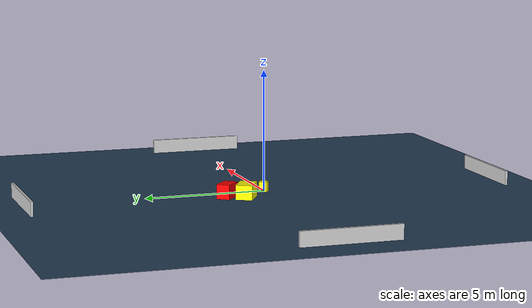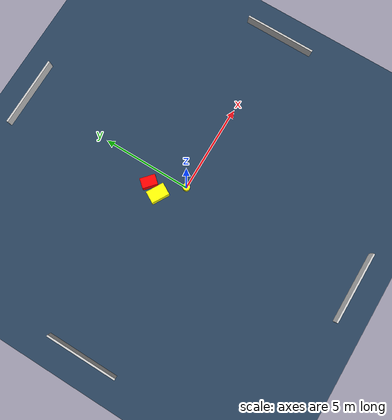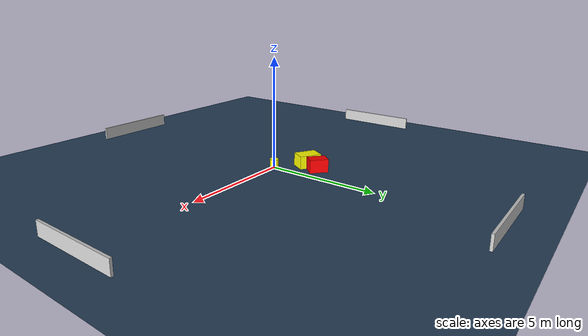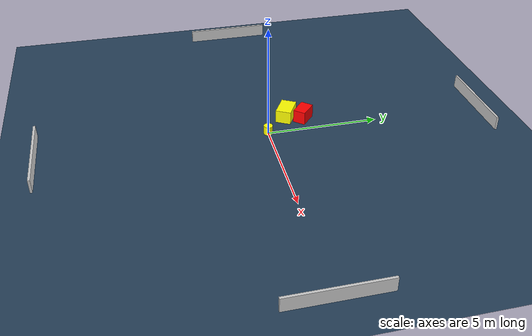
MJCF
<?xml version="1.0" ?>
<mujoco model="generated_environment">
  <option timestep="0.01" integrator="RK4" cone="elliptic"/>
  <default>
    <geom density="1"/>
  </default>
  <asset>
    <texture builtin="gradient" height="3072" name="skybox" rgb1="0.3 0.5 0.7" rgb2="0 0 0" type="skybox" width="512"/>
    <texture builtin="checker" height="300" name="groundplane" rgb1="0.2 0.3 0.4" rgb2="0.1 0.2 0.3" type="2d" width="300"/>
    <material name="groundplane" reflectance="0.2" texrepeat="5 5" texture="groundplane"/>
  </asset>
  <worldbody>
    <light dir="0 0 -1" directional="true" pos="0 0 1.5"/>
    <geom condim="3" friction="0.5 0.005 0.001" material="groundplane" name="floor" pos="0 0 0" size="0 0 0.05" type="plane"/>
    <body name="walls">
      <geom name="wall_1" condim="4" pos="-10.0 0.0 0.3" rgba="0.800000011920929 0.800000011920929 0.800000011920929 1.0" size="0.05 2.0 0.3" type="box"/>
      <geom name="wall_2" condim="4" pos="10.0 0.0 0.3" rgba="0.800000011920929 0.800000011920929 0.800000011920929 1.0" size="0.05 2.0 0.3" type="box"/>
      <geom name="wall_3" condim="4" pos="0.0 -10.0 0.3" rgba="0.800000011920929 0.800000011920929 0.800000011920929 1.0" size="2.0 0.05 0.3" type="box"/>
      <geom name="wall_4" condim="4" pos="0.0 10.0 0.3" rgba="0.800000011920929 0.800000011920929 0.800000011920929 1.0" size="2.0 0.05 0.3" type="box"/>
    </body>
    <body name="robot">
      <joint name="joint_x" type="slide" pos="0 0 0" axis="1 0 0"/>
      <joint name="joint_y" type="slide" pos="0 0 0" axis="0 1 0"/>
      <geom name="robot" type="cylinder" pos="0.0 0.0 0.2" size="0.2 0.2 0.0" mass="5.0" friction="1.0 0.005 0.0001" condim="4" rgba="1.0 1.0 0.0 1.0"/>
    </body>
    <body name="obstacle_1_movable">
      <geom name="obstacle_1_movable" condim="4" pos="-1.08714667907301 1.0931918740515527 0.3" euler="0 0 150.12984875981175" friction="0.0 0.005 0.001" rgba="1.0 1.0 0.0 1.0" size="0.5091122345885797 0.3433484279579619 0.3" type="box" mass="0.1"/>
      <joint type="free"/>
    </body>
    <body name="obstacle_2_static">
      <geom name="obstacle_2_static" condim="4" pos="-0.801311789189922 1.818214802750909 0.3" euler="0 0 138.6052305919732" friction="0.0 0.005 0.001" rgba="1.0 0.0 0.0 1.0" size="0.4201714187081059 0.28129075934083975 0.3" type="box"/>
    </body>
  </worldbody>
  <actuator>
    <motor name="actuator_x" joint="joint_x" gear="1" ctrlrange="-1 1"/>
    <motor name="actuator_y" joint="joint_y" gear="1" ctrlrange="-1 1"/>
  </actuator>
</mujoco>
